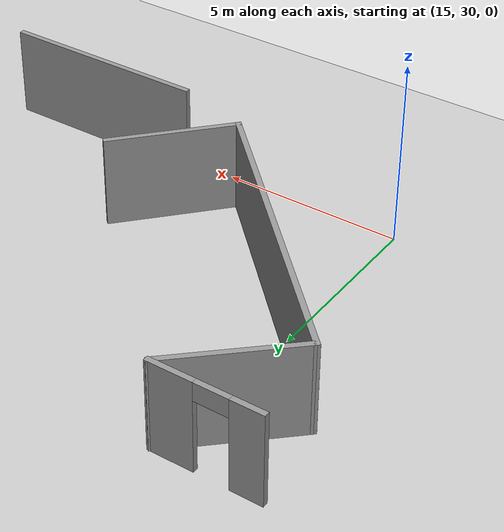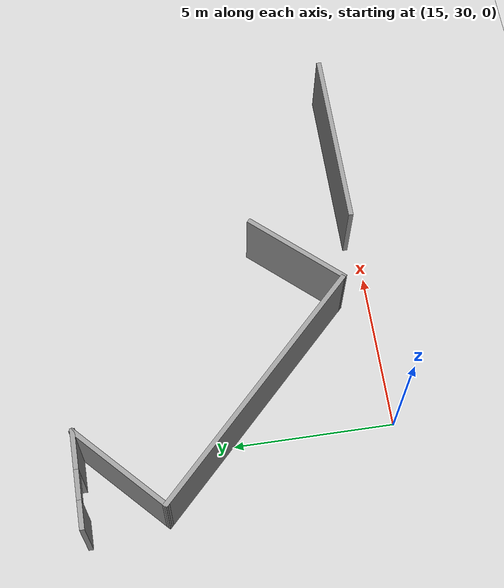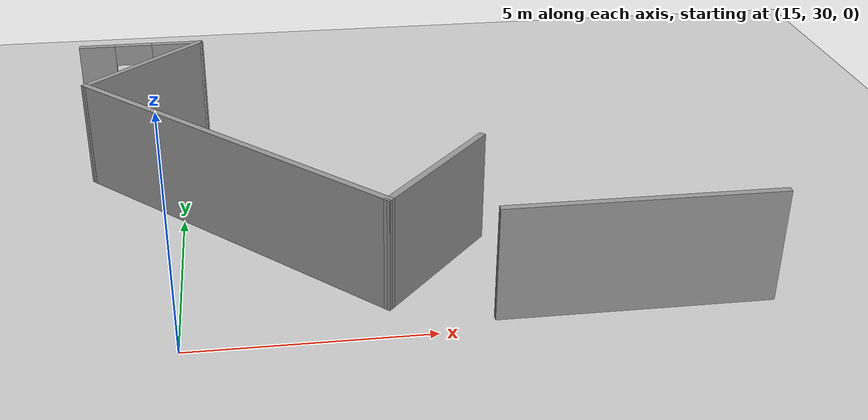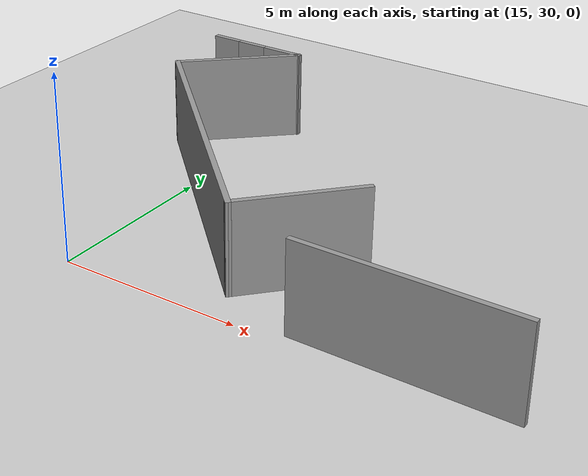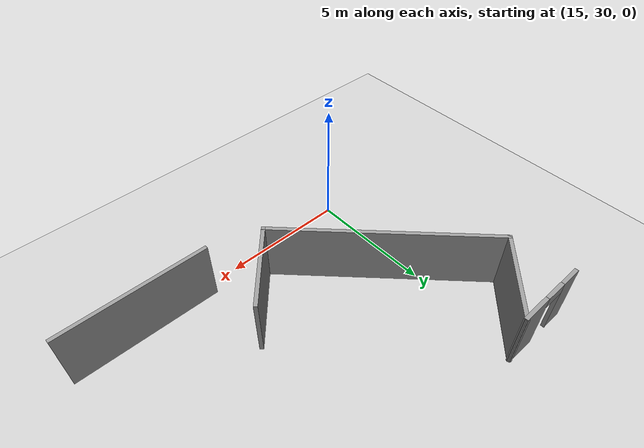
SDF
<sdf version="1.7">
 <world name="default">
  <model name="ground_plane">
   <static>1</static>
   <link name="link">
    <collision name="collision">
     <geometry><plane><normal>0 0 1</normal><size>100 100</size></plane></geometry>
     <surface>
      <contact><collide_bitmask>65535</collide_bitmask></contact>
      <friction><ode><mu>100</mu><mu2>50</mu2></ode></friction>
     </surface>
    </collision>
    <visual name="visual">
     <cast_shadows>0</cast_shadows>
     <geometry><plane><normal>0 0 1</normal><size>100 100</size></plane></geometry>
     <material>
      <script><uri>file://media/materials/scripts/gazebo.material</uri><name>Gazebo/Grey</name></script>
     </material>
    </visual>
   </link>
  </model>
  <model name="Level_1_with_doors">
   <link name="Wall_25">
    <pose>11.3094 11.7087 0 0 -0 2.35619</pose>
    <visual name="Wall_25_Visual">
     <pose>0 0 1.25 0 -0 0</pose>
     <geometry><box><size>9 0.15 2.5</size></box></geometry>
     <material>
      <script><uri>file://media/materials/scripts/gazebo.material</uri><name>Gazebo/Grey</name></script>
      <ambient>1 1 1 1</ambient>
      <shader type="pixel"/>
     </material>
     <meta><layer>0</layer></meta>
    </visual>
    <collision name="Wall_25_Collision">
     <pose>0 0 1.25 0 -0 0</pose>
     <geometry><box><size>9 0.15 2.5</size></box></geometry>
     <surface>
      <friction>
       <ode><mu>1</mu><mu2>1</mu2><fdir1>0 0 0</fdir1><slip1>0</slip1><slip2>0</slip2></ode>
       <torsional>
        <coefficient>1</coefficient>
        <patch_radius>0</patch_radius>
        <surface_radius>0</surface_radius>
        <use_patch_radius>1</use_patch_radius>
        <ode><slip>0</slip></ode>
       </torsional>
      </friction>
      <bounce><restitution_coefficient>0</restitution_coefficient><threshold>1e+06</threshold></bounce>
      <contact>
       <collide_without_contact>0</collide_without_contact>
       <collide_without_contact_bitmask>1</collide_without_contact_bitmask>
       <collide_bitmask>1</collide_bitmask>
       <ode>
        <soft_cfm>0</soft_cfm>
        <soft_erp>0.2</soft_erp>
        <kp>1e+13</kp>
        <kd>1</kd>
        <max_vel>0.01</max_vel>
        <min_depth>0</min_depth>
       </ode>
       <bullet>
        <split_impulse>1</split_impulse>
        <split_impulse_penetration_threshold>-0.01</split_impulse_penetration_threshold>
        <soft_cfm>0</soft_cfm>
        <soft_erp>0.2</soft_erp>
        <kp>1e+13</kp>
        <kd>1</kd>
       </bullet>
      </contact>
     </surface>
    </collision>
   </link>
   <link name="Wall_29">
    <pose>9.30646 17.2506 0 0 -0 0</pose>
    <visual name="Wall_29_Visual_0">
     <pose>-1.06598 0 1.25 0 -0 0</pose>
     <geometry><box><size>0.868033 0.15 2.5</size></box></geometry>
     <material>
      <script><uri>file://media/materials/scripts/gazebo.material</uri><name>Gazebo/Grey</name></script>
      <ambient>1 1 1 1</ambient>
      <shader type="pixel"/>
     </material>
     <meta><layer>0</layer></meta>
    </visual>
    <visual name="Wall_29_Visual_1">
     <pose>0.884017 0 1.25 0 -0 0</pose>
     <geometry><box><size>1.23197 0.15 2.5</size></box></geometry>
     <material>
      <script><uri>file://media/materials/scripts/gazebo.material</uri><name>Gazebo/Grey</name></script>
      <ambient>1 1 1 1</ambient>
      <shader type="pixel"/>
     </material>
     <meta><layer>0</layer></meta>
    </visual>
    <visual name="Wall_29_Visual_2">
     <pose>-0.181967 0 2.25 0 -0 0</pose>
     <geometry><box><size>0.9 0.15 0.5</size></box></geometry>
     <material>
      <script><uri>file://media/materials/scripts/gazebo.material</uri><name>Gazebo/Grey</name></script>
      <ambient>1 1 1 1</ambient>
      <shader type="pixel"/>
     </material>
     <meta><layer>0</layer></meta>
    </visual>
    <collision name="Wall_29_Collision_0">
     <pose>-1.06598 0 1.25 0 -0 0</pose>
     <geometry><box><size>0.868033 0.15 2.5</size></box></geometry>
     <surface>
      <friction>
       <ode><mu>1</mu><mu2>1</mu2><fdir1>0 0 0</fdir1><slip1>0</slip1><slip2>0</slip2></ode>
       <torsional>
        <coefficient>1</coefficient>
        <patch_radius>0</patch_radius>
        <surface_radius>0</surface_radius>
        <use_patch_radius>1</use_patch_radius>
        <ode><slip>0</slip></ode>
       </torsional>
      </friction>
      <bounce><restitution_coefficient>0</restitution_coefficient><threshold>1e+06</threshold></bounce>
      <contact>
       <collide_without_contact>0</collide_without_contact>
       <collide_without_contact_bitmask>1</collide_without_contact_bitmask>
       <collide_bitmask>1</collide_bitmask>
       <ode>
        <soft_cfm>0</soft_cfm>
        <soft_erp>0.2</soft_erp>
        <kp>1e+13</kp>
        <kd>1</kd>
        <max_vel>0.01</max_vel>
        <min_depth>0</min_depth>
       </ode>
       <bullet>
        <split_impulse>1</split_impulse>
        <split_impulse_penetration_threshold>-0.01</split_impulse_penetration_threshold>
        <soft_cfm>0</soft_cfm>
        <soft_erp>0.2</soft_erp>
        <kp>1e+13</kp>
        <kd>1</kd>
       </bullet>
      </contact>
     </surface>
    </collision>
    <collision name="Wall_29_Collision_2">
     <pose>-0.181967 0 2.25 0 -0 0</pose>
     <geometry><box><size>0.9 0.15 0.5</size></box></geometry>
     <surface>
      <friction>
       <ode><mu>1</mu><mu2>1</mu2><fdir1>0 0 0</fdir1><slip1>0</slip1><slip2>0</slip2></ode>
       <torsional>
        <coefficient>1</coefficient>
        <patch_radius>0</patch_radius>
        <surface_radius>0</surface_radius>
        <use_patch_radius>1</use_patch_radius>
        <ode><slip>0</slip></ode>
       </torsional>
      </friction>
      <bounce><restitution_coefficient>0</restitution_coefficient><threshold>1e+06</threshold></bounce>
      <contact>
       <collide_without_contact>0</collide_without_contact>
       <collide_without_contact_bitmask>1</collide_without_contact_bitmask>
       <collide_bitmask>1</collide_bitmask>
       <ode>
        <soft_cfm>0</soft_cfm>
        <soft_erp>0.2</soft_erp>
        <kp>1e+13</kp>
        <kd>1</kd>
        <max_vel>0.01</max_vel>
        <min_depth>0</min_depth>
       </ode>
       <bullet>
        <split_impulse>1</split_impulse>
        <split_impulse_penetration_threshold>-0.01</split_impulse_penetration_threshold>
        <soft_cfm>0</soft_cfm>
        <soft_erp>0.2</soft_erp>
        <kp>1e+13</kp>
        <kd>1</kd>
       </bullet>
      </contact>
     </surface>
    </collision>
    <collision name="Wall_29_Collision_1">
     <pose>0.884017 0 1.25 0 -0 0</pose>
     <geometry><box><size>1.23197 0.15 2.5</size></box></geometry>
     <surface>
      <friction>
       <ode><mu>1</mu><mu2>1</mu2><fdir1>0 0 0</fdir1><slip1>0</slip1><slip2>0</slip2></ode>
       <torsional>
        <coefficient>1</coefficient>
        <patch_radius>0</patch_radius>
        <surface_radius>0</surface_radius>
        <use_patch_radius>1</use_patch_radius>
        <ode><slip>0</slip></ode>
       </torsional>
      </friction>
      <bounce><restitution_coefficient>0</restitution_coefficient><threshold>1e+06</threshold></bounce>
      <contact>
       <collide_without_contact>0</collide_without_contact>
       <collide_without_contact_bitmask>1</collide_without_contact_bitmask>
       <collide_bitmask>1</collide_bitmask>
       <ode>
        <soft_cfm>0</soft_cfm>
        <soft_erp>0.2</soft_erp>
        <kp>1e+13</kp>
        <kd>1</kd>
        <max_vel>0.01</max_vel>
        <min_depth>0</min_depth>
       </ode>
       <bullet>
        <split_impulse>1</split_impulse>
        <split_impulse_penetration_threshold>-0.01</split_impulse_penetration_threshold>
        <soft_cfm>0</soft_cfm>
        <soft_erp>0.2</soft_erp>
        <kp>1e+13</kp>
        <kd>1</kd>
       </bullet>
      </contact>
     </surface>
    </collision>
   </link>
   <link name="Wall_30">
    <pose>9.45595 16.0441 0 0 0 -2.38398</pose>
    <visual name="Wall_30_Visual">
     <pose>0 0 1.25 0 -0 0</pose>
     <geometry><box><size>3.66146 0.15 2.5</size></box></geometry>
     <material>
      <script><uri>file://media/materials/scripts/gazebo.material</uri><name>Gazebo/Grey</name></script>
      <ambient>1 1 1 1</ambient>
      <shader type="pixel"/>
     </material>
     <meta><layer>0</layer></meta>
    </visual>
    <collision name="Wall_30_Collision">
     <pose>0 0 1.25 0 -0 0</pose>
     <geometry><box><size>3.66146 0.15 2.5</size></box></geometry>
     <surface>
      <friction>
       <ode><mu>1</mu><mu2>1</mu2><fdir1>0 0 0</fdir1><slip1>0</slip1><slip2>0</slip2></ode>
       <torsional>
        <coefficient>1</coefficient>
        <patch_radius>0</patch_radius>
        <surface_radius>0</surface_radius>
        <use_patch_radius>1</use_patch_radius>
        <ode><slip>0</slip></ode>
       </torsional>
      </friction>
      <bounce><restitution_coefficient>0</restitution_coefficient><threshold>1e+06</threshold></bounce>
      <contact>
       <collide_without_contact>0</collide_without_contact>
       <collide_without_contact_bitmask>1</collide_without_contact_bitmask>
       <collide_bitmask>1</collide_bitmask>
       <ode>
        <soft_cfm>0</soft_cfm>
        <soft_erp>0.2</soft_erp>
        <kp>1e+13</kp>
        <kd>1</kd>
        <max_vel>0.01</max_vel>
        <min_depth>0</min_depth>
       </ode>
       <bullet>
        <split_impulse>1</split_impulse>
        <split_impulse_penetration_threshold>-0.01</split_impulse_penetration_threshold>
        <soft_cfm>0</soft_cfm>
        <soft_erp>0.2</soft_erp>
        <kp>1e+13</kp>
        <kd>1</kd>
       </bullet>
      </contact>
     </surface>
    </collision>
   </link>
   <link name="Wall_32">
    <pose>15.5755 9.84637 0 0 -0 0.839226</pose>
    <visual name="Wall_32_Visual">
     <pose>0 0 1.25 0 -0 0</pose>
     <geometry><box><size>3.5544 0.15 2.5</size></box></geometry>
     <material>
      <script><uri>file://media/materials/scripts/gazebo.material</uri><name>Gazebo/Grey</name></script>
      <ambient>1 1 1 1</ambient>
      <shader type="pixel"/>
     </material>
     <meta><layer>0</layer></meta>
    </visual>
    <collision name="Wall_32_Collision">
     <pose>0 0 1.25 0 -0 0</pose>
     <geometry><box><size>3.5544 0.15 2.5</size></box></geometry>
     <surface>
      <friction>
       <ode><mu>1</mu><mu2>1</mu2><fdir1>0 0 0</fdir1><slip1>0</slip1><slip2>0</slip2></ode>
       <torsional>
        <coefficient>1</coefficient>
        <patch_radius>0</patch_radius>
        <surface_radius>0</surface_radius>
        <use_patch_radius>1</use_patch_radius>
        <ode><slip>0</slip></ode>
       </torsional>
      </friction>
      <bounce><restitution_coefficient>0</restitution_coefficient><threshold>1e+06</threshold></bounce>
      <contact>
       <collide_without_contact>0</collide_without_contact>
       <collide_without_contact_bitmask>1</collide_without_contact_bitmask>
       <collide_bitmask>1</collide_bitmask>
       <ode>
        <soft_cfm>0</soft_cfm>
        <soft_erp>0.2</soft_erp>
        <kp>1e+13</kp>
        <kd>1</kd>
        <max_vel>0.01</max_vel>
        <min_depth>0</min_depth>
       </ode>
       <bullet>
        <split_impulse>1</split_impulse>
        <split_impulse_penetration_threshold>-0.01</split_impulse_penetration_threshold>
        <soft_cfm>0</soft_cfm>
        <soft_erp>0.2</soft_erp>
        <kp>1e+13</kp>
        <kd>1</kd>
       </bullet>
      </contact>
     </surface>
    </collision>
   </link>
   <link name="Wall_61">
    <pose>19.3432 7.96607 0 0 -0 0</pose>
    <visual name="Wall_61_Visual">
     <pose>0 0 1.25 0 -0 0</pose>
     <geometry><box><size>5.75 0.15 2.5</size></box></geometry>
     <material>
      <script><uri>file://media/materials/scripts/gazebo.material</uri><name>Gazebo/Grey</name></script>
      <ambient>1 1 1 1</ambient>
      <shader type="pixel"/>
     </material>
     <meta><layer>0</layer></meta>
    </visual>
    <collision name="Wall_61_Collision">
     <pose>0 0 1.25 0 -0 0</pose>
     <geometry><box><size>5.75 0.15 2.5</size></box></geometry>
     <surface>
      <friction>
       <ode><mu>1</mu><mu2>1</mu2><fdir1>0 0 0</fdir1><slip1>0</slip1><slip2>0</slip2></ode>
       <torsional>
        <coefficient>1</coefficient>
        <patch_radius>0</patch_radius>
        <surface_radius>0</surface_radius>
        <use_patch_radius>1</use_patch_radius>
        <ode><slip>0</slip></ode>
       </torsional>
      </friction>
      <bounce><restitution_coefficient>0</restitution_coefficient><threshold>1e+06</threshold></bounce>
      <contact>
       <collide_without_contact>0</collide_without_contact>
       <collide_without_contact_bitmask>1</collide_without_contact_bitmask>
       <collide_bitmask>1</collide_bitmask>
       <ode>
        <soft_cfm>0</soft_cfm>
        <soft_erp>0.2</soft_erp>
        <kp>1e+13</kp>
        <kd>1</kd>
        <max_vel>0.01</max_vel>
        <min_depth>0</min_depth>
       </ode>
       <bullet>
        <split_impulse>1</split_impulse>
        <split_impulse_penetration_threshold>-0.01</split_impulse_penetration_threshold>
        <soft_cfm>0</soft_cfm>
        <soft_erp>0.2</soft_erp>
        <kp>1e+13</kp>
        <kd>1</kd>
       </bullet>
      </contact>
     </surface>
    </collision>
   </link>
   <static>1</static>
   <pose>4.6984 22.4203 0 0 -0 0</pose>
  </model>
 </world>
</sdf>
